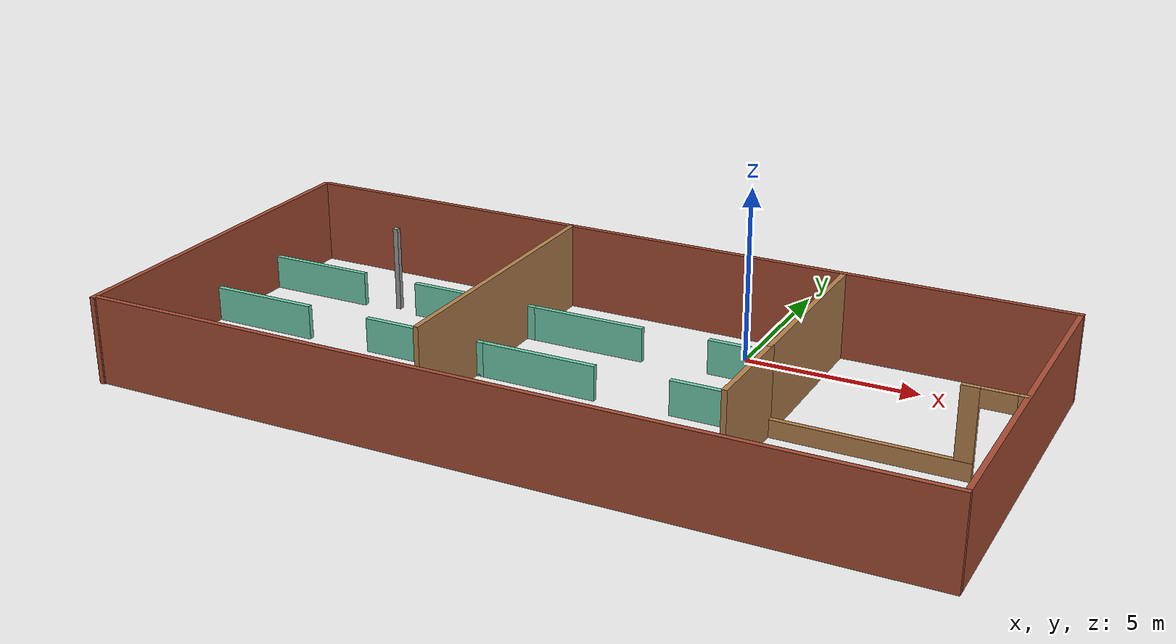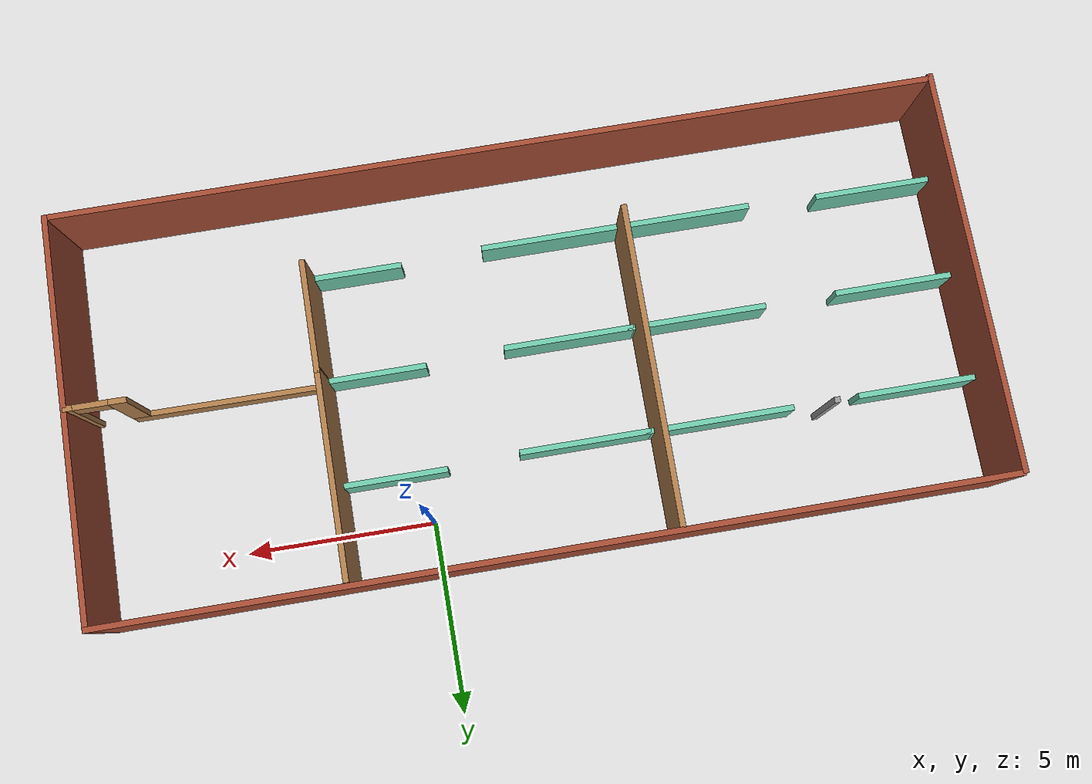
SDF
<?xml version='1.0'?>
<sdf version='1.6'>
  <model name='restaurants'>
    <pose frame=''>-3.08245 -3.93434 0 0 -0 0</pose>
    <link name='Wall_102'>
      <collision name='Wall_102_Collision'>
        <geometry>
          <box>
            <size>0.15 0.15 2.5</size>
          </box>
        </geometry>
        <pose frame=''>0 0 1.25 0 -0 0</pose>
      </collision>
      <visual name='Wall_102_Visual'>
        <pose frame=''>0 0 1.25 0 -0 0</pose>
        <geometry>
          <box>
            <size>0.15 0.15 2.5</size>
          </box>
        </geometry>
        <material>
          <script>
            <uri>file://media/materials/scripts/gazebo.material</uri>
            <name>Gazebo/Grey</name>
          </script>
          <ambient>1 1 1 1</ambient>
        </material>
        <meta>
          <layer>0</layer>
        </meta>
      </visual>
      <pose frame=''>-7.47858 2.76526 0 0 -0 0</pose>
    </link>
    <link name='Wall_15'>
      <pose frame=''>8.49064 -0.166084 0 0 0 -0.006432</pose>
      <visual name='Wall_15_Visual_0'>
        <pose frame=''>-3.2244 0 1.25 0 -0 0</pose>
        <geometry>
          <box>
            <size>0.051192 0.15 2.5</size>
          </box>
        </geometry>
        <material>
          <script>
            <uri>file://media/materials/scripts/gazebo.material</uri>
            <name>Gazebo/Wood</name>
          </script>
          <ambient>1 1 1 1</ambient>
        </material>
        <meta>
          <layer>0</layer>
        </meta>
      </visual>
      <collision name='Wall_15_Collision_0'>
        <geometry>
          <box>
            <size>0.051192 0.15 2.5</size>
          </box>
        </geometry>
        <pose frame=''>-3.2244 0 1.25 0 -0 0</pose>
      </collision>
      <visual name='Wall_15_Visual_1'>
        <pose frame=''>3.12865 0 1.25 0 -0 0</pose>
        <geometry>
          <box>
            <size>0.24271 0.15 2.5</size>
          </box>
        </geometry>
        <material>
          <script>
            <uri>file://media/materials/scripts/gazebo.material</uri>
            <name>Gazebo/Wood</name>
          </script>
          <ambient>1 1 1 1</ambient>
        </material>
        <meta>
          <layer>0</layer>
        </meta>
      </visual>
      <collision name='Wall_15_Collision_1'>
        <geometry>
          <box>
            <size>0.24271 0.15 2.5</size>
          </box>
        </geometry>
        <pose frame=''>3.12865 0 1.25 0 -0 0</pose>
      </collision>
      <visual name='Wall_15_Visual_2'>
        <pose frame=''>-0.545759 0 0.25 0 -0 0</pose>
        <geometry>
          <box>
            <size>5.3061 0.15 0.5</size>
          </box>
        </geometry>
        <material>
          <script>
            <uri>file://media/materials/scripts/gazebo.material</uri>
            <name>Gazebo/Wood</name>
          </script>
          <ambient>1 1 1 1</ambient>
        </material>
        <meta>
          <layer>0</layer>
        </meta>
      </visual>
      <collision name='Wall_15_Collision_2'>
        <geometry>
          <box>
            <size>5.3061 0.15 0.5</size>
          </box>
        </geometry>
        <pose frame=''>-0.545759 0 0.25 0 -0 0</pose>
      </collision>
      <visual name='Wall_15_Visual_3'>
        <pose frame=''>1.87074 0 1.5 0 -0 0</pose>
        <geometry>
          <box>
            <size>0.473097 0.15 2</size>
          </box>
        </geometry>
        <material>
          <script>
            <uri>file://media/materials/scripts/gazebo.material</uri>
            <name>Gazebo/Wood</name>
          </script>
          <ambient>1 1 1 1</ambient>
        </material>
        <meta>
          <layer>0</layer>
        </meta>
      </visual>
      <collision name='Wall_15_Collision_3'>
        <geometry>
          <box>
            <size>0.473097 0.15 2</size>
          </box>
        </geometry>
        <pose frame=''>1.87074 0 1.5 0 -0 0</pose>
      </collision>
      <visual name='Wall_15_Visual_4'>
        <pose frame=''>2.55729 0 2.25 0 -0 0</pose>
        <geometry>
          <box>
            <size>0.9 0.15 0.5</size>
          </box>
        </geometry>
        <material>
          <script>
            <uri>file://media/materials/scripts/gazebo.material</uri>
            <name>Gazebo/Wood</name>
          </script>
          <ambient>1 1 1 1</ambient>
        </material>
        <meta>
          <layer>0</layer>
        </meta>
      </visual>
      <collision name='Wall_15_Collision_4'>
        <geometry>
          <box>
            <size>0.9 0.15 0.5</size>
          </box>
        </geometry>
        <pose frame=''>2.55729 0 2.25 0 -0 0</pose>
      </collision>
    </link>
    <link name='Wall_17'>
      <collision name='Wall_17_Collision'>
        <geometry>
          <box>
            <size>5.45915 0.15 2.5</size>
          </box>
        </geometry>
        <pose frame=''>0 0 1.25 0 -0 0</pose>
      </collision>
      <visual name='Wall_17_Visual'>
        <pose frame=''>0 0 1.25 0 -0 0</pose>
        <geometry>
          <box>
            <size>5.45915 0.15 2.5</size>
          </box>
        </geometry>
        <material>
          <script>
            <uri>file://media/materials/scripts/gazebo.material</uri>
            <name>Gazebo/Wood</name>
          </script>
          <ambient>1 1 1 1</ambient>
        </material>
        <meta>
          <layer>0</layer>
        </meta>
      </visual>
      <pose frame=''>5.31564 2.50892 0 0 -0 1.57072</pose>
    </link>
    <link name='Wall_19'>
      <collision name='Wall_19_Collision'>
        <geometry>
          <box>
            <size>3 0.15 2.5</size>
          </box>
        </geometry>
        <pose frame=''>0 0 1.25 0 -0 0</pose>
      </collision>
      <visual name='Wall_19_Visual'>
        <pose frame=''>0 0 1.25 0 -0 0</pose>
        <geometry>
          <box>
            <size>3 0.15 2.5</size>
          </box>
        </geometry>
        <material>
          <script>
            <uri>file://media/materials/scripts/gazebo.material</uri>
            <name>Gazebo/Wood</name>
          </script>
          <ambient>1 1 1 1</ambient>
        </material>
        <meta>
          <layer>0</layer>
        </meta>
      </visual>
      <pose frame=''>5.31545 -1.57066 0 0 0 -1.5708</pose>
    </link>
    <link name='Wall_4'>
      <collision name='Wall_4_Collision'>
        <geometry>
          <box>
            <size>23.5 0.15 2.5</size>
          </box>
        </geometry>
        <pose frame=''>0 0 1.25 0 -0 0</pose>
      </collision>
      <visual name='Wall_4_Visual'>
        <pose frame=''>0 0 1.25 0 -0 0</pose>
        <geometry>
          <box>
            <size>23.5 0.15 2.5</size>
          </box>
        </geometry>
        <material>
          <script>
            <uri>file://media/materials/scripts/gazebo.material</uri>
            <name>Gazebo/Bricks</name>
          </script>
          <ambient>1 1 1 1</ambient>
        </material>
        <meta>
          <layer>0</layer>
        </meta>
      </visual>
      <pose frame=''>0.042334 5.32675 0 0 -0 0</pose>
    </link>
    <link name='Wall_48'>
      <collision name='Wall_48_Collision'>
        <geometry>
          <box>
            <size>8.5 0.15 2.5</size>
          </box>
        </geometry>
        <pose frame=''>0 0 1.25 0 -0 0</pose>
      </collision>
      <visual name='Wall_48_Visual'>
        <pose frame=''>0 0 1.25 0 -0 0</pose>
        <geometry>
          <box>
            <size>8.5 0.15 2.5</size>
          </box>
        </geometry>
        <material>
          <script>
            <uri>file://media/materials/scripts/gazebo.material</uri>
            <name>Gazebo/Wood</name>
          </script>
          <ambient>1 1 1 1</ambient>
        </material>
        <meta>
          <layer>0</layer>
        </meta>
      </visual>
      <pose frame=''>-3.08222 1.07627 0 0 0 -1.57567</pose>
    </link>
    <link name='Wall_6'>
      <collision name='Wall_6_Collision'>
        <geometry>
          <box>
            <size>10.75 0.15 2.5</size>
          </box>
        </geometry>
        <pose frame=''>0 0 1.25 0 -0 0</pose>
      </collision>
      <visual name='Wall_6_Visual'>
        <pose frame=''>0 0 1.25 0 -0 0</pose>
        <geometry>
          <box>
            <size>10.75 0.15 2.5</size>
          </box>
        </geometry>
        <material>
          <script>
            <uri>file://media/materials/scripts/gazebo.material</uri>
            <name>Gazebo/Bricks</name>
          </script>
          <ambient>1 1 1 1</ambient>
        </material>
        <meta>
          <layer>0</layer>
        </meta>
      </visual>
      <pose frame=''>11.7173 0.026751 0 0 0 -1.5708</pose>
    </link>
    <link name='Wall_66'>
      <collision name='Wall_66_Collision'>
        <geometry>
          <box>
            <size>3.25 0.15 1</size>
          </box>
        </geometry>
        <pose frame=''>0 0 0.5 0 -0 0</pose>
      </collision>
      <visual name='Wall_66_Visual'>
        <pose frame=''>0 0 0.5 0 -0 0</pose>
        <geometry>
          <box>
            <size>3.25 0.15 1</size>
          </box>
        </geometry>
        <material>
          <script>
            <uri>file://media/materials/scripts/gazebo.material</uri>
            <name>Gazebo/Grey</name>
          </script>
          <ambient>0.435294 0.796078 0.67451 1</ambient>
        </material>
        <meta>
          <layer>0</layer>
        </meta>
      </visual>
      <pose frame=''>-10.1176 2.54034 0 0 -0 0</pose>
    </link>
    <link name='Wall_69'>
      <collision name='Wall_69_Collision'>
        <geometry>
          <box>
            <size>3.25 0.15 1</size>
          </box>
        </geometry>
        <pose frame=''>0 0 0.5 0 -0 0</pose>
      </collision>
      <visual name='Wall_69_Visual'>
        <pose frame=''>0 0 0.5 0 -0 0</pose>
        <geometry>
          <box>
            <size>3.25 0.15 1</size>
          </box>
        </geometry>
        <material>
          <script>
            <uri>file://media/materials/scripts/gazebo.material</uri>
            <name>Gazebo/Grey</name>
          </script>
          <ambient>0.435294 0.796078 0.67451 1</ambient>
        </material>
        <meta>
          <layer>0</layer>
        </meta>
      </visual>
      <pose frame=''>-10.1046 -0.300662 0 0 -0 0</pose>
    </link>
    <link name='Wall_7'>
      <collision name='Wall_7_Collision'>
        <geometry>
          <box>
            <size>23.5847 0.15 2.5</size>
          </box>
        </geometry>
        <pose frame=''>0 0 1.25 0 -0 0</pose>
      </collision>
      <visual name='Wall_7_Visual'>
        <pose frame=''>0 0 1.25 0 -0 0</pose>
        <geometry>
          <box>
            <size>23.5847 0.15 2.5</size>
          </box>
        </geometry>
        <material>
          <script>
            <uri>file://media/materials/scripts/gazebo.material</uri>
            <name>Gazebo/Bricks</name>
          </script>
          <ambient>1 1 1 1</ambient>
        </material>
        <meta>
          <layer>0</layer>
        </meta>
      </visual>
      <pose frame=''>0 -5.27325 0 0 -0 3.14159</pose>
    </link>
    <link name='Wall_71'>
      <collision name='Wall_71_Collision'>
        <geometry>
          <box>
            <size>3.25 0.15 1</size>
          </box>
        </geometry>
        <pose frame=''>0 0 0.5 0 -0 0</pose>
      </collision>
      <visual name='Wall_71_Visual'>
        <pose frame=''>0 0 0.5 0 -0 0</pose>
        <geometry>
          <box>
            <size>3.25 0.15 1</size>
          </box>
        </geometry>
        <material>
          <script>
            <uri>file://media/materials/scripts/gazebo.material</uri>
            <name>Gazebo/Grey</name>
          </script>
          <ambient>0.435294 0.796078 0.67451 1</ambient>
        </material>
        <meta>
          <layer>0</layer>
        </meta>
      </visual>
      <pose frame=''>-10.1406 -3.04466 0 0 -0 0</pose>
    </link>
    <link name='Wall_73'>
      <collision name='Wall_73_Collision'>
        <geometry>
          <box>
            <size>3.98261 0.15 1</size>
          </box>
        </geometry>
        <pose frame=''>0 0 0.5 0 -0 0</pose>
      </collision>
      <visual name='Wall_73_Visual'>
        <pose frame=''>0 0 0.5 0 -0 0</pose>
        <geometry>
          <box>
            <size>3.98261 0.15 1</size>
          </box>
        </geometry>
        <material>
          <script>
            <uri>file://media/materials/scripts/gazebo.material</uri>
            <name>Gazebo/Grey</name>
          </script>
          <ambient>0.435294 0.796078 0.67451 1</ambient>
        </material>
        <meta>
          <layer>0</layer>
        </meta>
      </visual>
      <pose frame=''>-4.76086 2.55834 0 0 -0 0</pose>
    </link>
    <link name='Wall_75'>
      <collision name='Wall_75_Collision'>
        <geometry>
          <box>
            <size>3.75 0.15 1</size>
          </box>
        </geometry>
        <pose frame=''>0 0 0.5 0 -0 0</pose>
      </collision>
      <visual name='Wall_75_Visual'>
        <pose frame=''>0 0 0.5 0 -0 0</pose>
        <geometry>
          <box>
            <size>3.75 0.15 1</size>
          </box>
        </geometry>
        <material>
          <script>
            <uri>file://media/materials/scripts/gazebo.material</uri>
            <name>Gazebo/Grey</name>
          </script>
          <ambient>0.435294 0.796078 0.67451 1</ambient>
        </material>
        <meta>
          <layer>0</layer>
        </meta>
      </visual>
      <pose frame=''>-4.69255 -0.273662 0 0 -0 0</pose>
    </link>
    <link name='Wall_79'>
      <collision name='Wall_79_Collision'>
        <geometry>
          <box>
            <size>3.6359 0.15 1</size>
          </box>
        </geometry>
        <pose frame=''>0 0 0.5 0 -0 0</pose>
      </collision>
      <visual name='Wall_79_Visual'>
        <pose frame=''>0 0 0.5 0 -0 0</pose>
        <geometry>
          <box>
            <size>3.6359 0.15 1</size>
          </box>
        </geometry>
        <material>
          <script>
            <uri>file://media/materials/scripts/gazebo.material</uri>
            <name>Gazebo/Grey</name>
          </script>
          <ambient>0.435294 0.796078 0.67451 1</ambient>
        </material>
        <meta>
          <layer>0</layer>
        </meta>
      </visual>
      <pose frame=''>-4.84555 -3.09866 0 0 -0 3.14159</pose>
    </link>
    <link name='Wall_8'>
      <collision name='Wall_8_Collision'>
        <geometry>
          <box>
            <size>10.75 0.15 2.5</size>
          </box>
        </geometry>
        <pose frame=''>0 0 1.25 0 -0 0</pose>
      </collision>
      <visual name='Wall_8_Visual'>
        <pose frame=''>0 0 1.25 0 -0 0</pose>
        <geometry>
          <box>
            <size>10.75 0.15 2.5</size>
          </box>
        </geometry>
        <material>
          <script>
            <uri>file://media/materials/scripts/gazebo.material</uri>
            <name>Gazebo/Bricks</name>
          </script>
          <ambient>1 1 1 1</ambient>
        </material>
        <meta>
          <layer>0</layer>
        </meta>
      </visual>
      <pose frame=''>-11.7173 -0.026751 0 0 -0 1.5708</pose>
    </link>
    <link name='Wall_81'>
      <collision name='Wall_81_Collision'>
        <geometry>
          <box>
            <size>3.5 0.15 1</size>
          </box>
        </geometry>
        <pose frame=''>0 0 0.5 0 -0 0</pose>
      </collision>
      <visual name='Wall_81_Visual'>
        <pose frame=''>0 0 0.5 0 -0 0</pose>
        <geometry>
          <box>
            <size>3.5 0.15 1</size>
          </box>
        </geometry>
        <material>
          <script>
            <uri>file://media/materials/scripts/gazebo.material</uri>
            <name>Gazebo/Grey</name>
          </script>
          <ambient>0.435294 0.796078 0.67451 1</ambient>
        </material>
        <meta>
          <layer>0</layer>
        </meta>
      </visual>
      <pose frame=''>-1.16955 2.55834 0 0 -0 0</pose>
    </link>
    <link name='Wall_83'>
      <collision name='Wall_83_Collision'>
        <geometry>
          <box>
            <size>3.5 0.15 1</size>
          </box>
        </geometry>
        <pose frame=''>0 0 0.5 0 -0 0</pose>
      </collision>
      <visual name='Wall_83_Visual'>
        <pose frame=''>0 0 0.5 0 -0 0</pose>
        <geometry>
          <box>
            <size>3.5 0.15 1</size>
          </box>
        </geometry>
        <material>
          <script>
            <uri>file://media/materials/scripts/gazebo.material</uri>
            <name>Gazebo/Grey</name>
          </script>
          <ambient>0.435294 0.796078 0.67451 1</ambient>
        </material>
        <meta>
          <layer>0</layer>
        </meta>
      </visual>
      <pose frame=''>-1.21755 -0.273662 0 0 -0 0</pose>
    </link>
    <link name='Wall_85'>
      <collision name='Wall_85_Collision'>
        <geometry>
          <box>
            <size>3.8641 0.15 1</size>
          </box>
        </geometry>
        <pose frame=''>0 0 0.5 0 -0 0</pose>
      </collision>
      <visual name='Wall_85_Visual'>
        <pose frame=''>0 0 0.5 0 -0 0</pose>
        <geometry>
          <box>
            <size>3.8641 0.15 1</size>
          </box>
        </geometry>
        <material>
          <script>
            <uri>file://media/materials/scripts/gazebo.material</uri>
            <name>Gazebo/Grey</name>
          </script>
          <ambient>0.435294 0.796078 0.67451 1</ambient>
        </material>
        <meta>
          <layer>0</layer>
        </meta>
      </visual>
      <pose frame=''>-1.24555 -3.09866 0 0 -0 0</pose>
    </link>
    <link name='Wall_87'>
      <collision name='Wall_87_Collision'>
        <geometry>
          <box>
            <size>2.75 0.15 1</size>
          </box>
        </geometry>
        <pose frame=''>0 0 0.5 0 -0 0</pose>
      </collision>
      <visual name='Wall_87_Visual'>
        <pose frame=''>0 0 0.5 0 -0 0</pose>
        <geometry>
          <box>
            <size>2.75 0.15 1</size>
          </box>
        </geometry>
        <material>
          <script>
            <uri>file://media/materials/scripts/gazebo.material</uri>
            <name>Gazebo/Grey</name>
          </script>
          <ambient>0.435294 0.796078 0.67451 1</ambient>
        </material>
        <meta>
          <layer>0</layer>
        </meta>
      </visual>
      <pose frame=''>3.86945 2.67934 0 0 -0 0</pose>
    </link>
    <link name='Wall_92'>
      <collision name='Wall_92_Collision'>
        <geometry>
          <box>
            <size>2.75 0.15 1</size>
          </box>
        </geometry>
        <pose frame=''>0 0 0.5 0 -0 0</pose>
      </collision>
      <visual name='Wall_92_Visual'>
        <pose frame=''>0 0 0.5 0 -0 0</pose>
        <geometry>
          <box>
            <size>2.75 0.15 1</size>
          </box>
        </geometry>
        <material>
          <script>
            <uri>file://media/materials/scripts/gazebo.material</uri>
            <name>Gazebo/Grey</name>
          </script>
          <ambient>0.435294 0.796078 0.67451 1</ambient>
        </material>
        <meta>
          <layer>0</layer>
        </meta>
      </visual>
      <pose frame=''>4.01545 -0.145661 0 0 -0 3.14159</pose>
    </link>
    <link name='Wall_94'>
      <collision name='Wall_94_Collision'>
        <geometry>
          <box>
            <size>2.5 0.15 1</size>
          </box>
        </geometry>
        <pose frame=''>0 0 0.5 0 -0 0</pose>
      </collision>
      <visual name='Wall_94_Visual'>
        <pose frame=''>0 0 0.5 0 -0 0</pose>
        <geometry>
          <box>
            <size>2.5 0.15 1</size>
          </box>
        </geometry>
        <material>
          <script>
            <uri>file://media/materials/scripts/gazebo.material</uri>
            <name>Gazebo/Grey</name>
          </script>
          <ambient>0.435294 0.796078 0.67451 1</ambient>
        </material>
        <meta>
          <layer>0</layer>
        </meta>
      </visual>
      <pose frame=''>4.14045 -2.99566 0 0 -0 3.14159</pose>
    </link>
    <static>1</static>
  </model>
</sdf>
